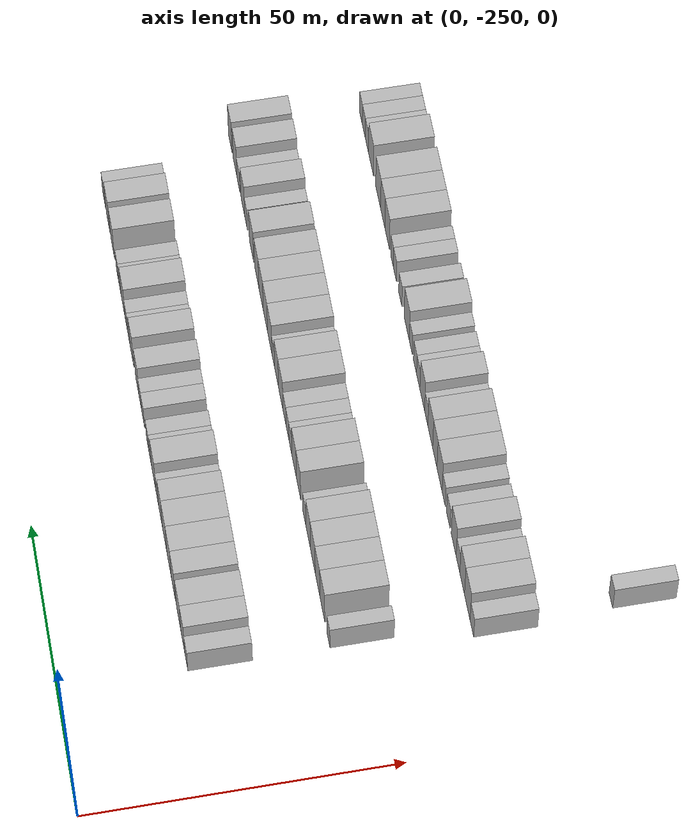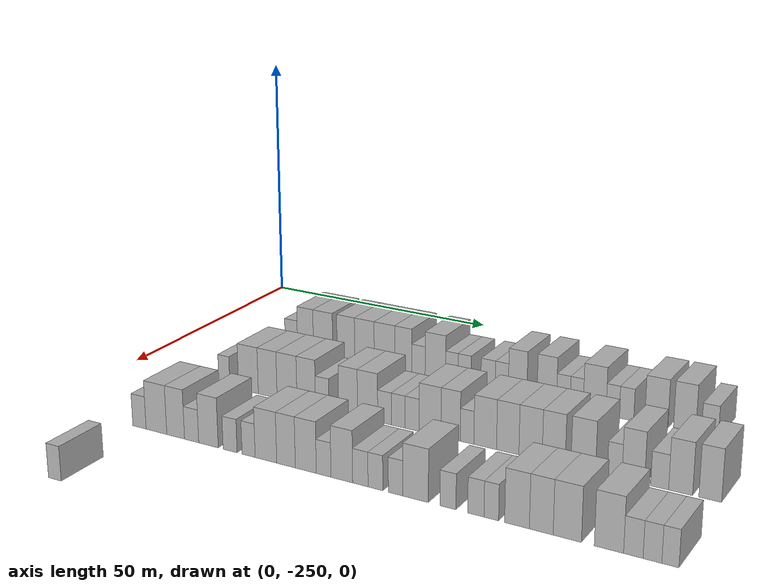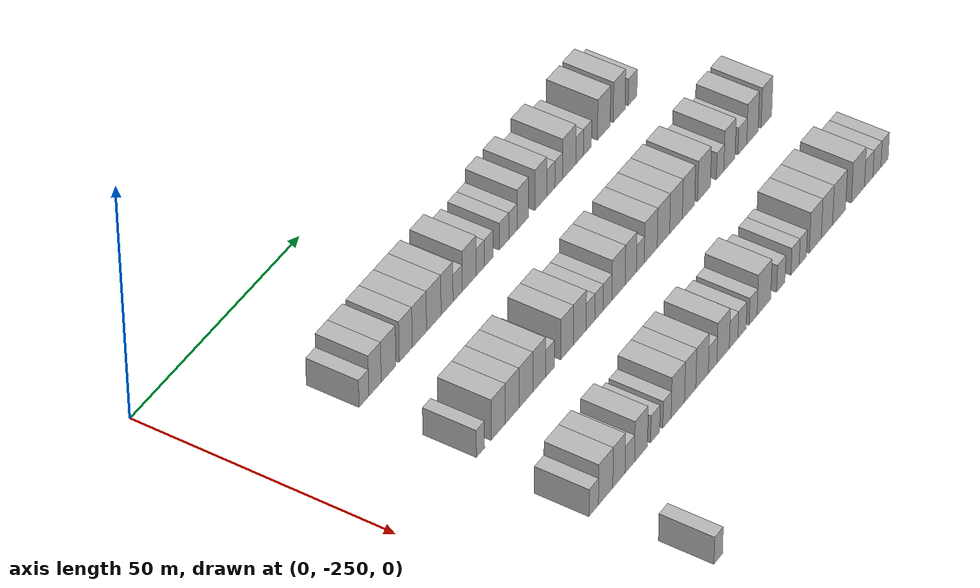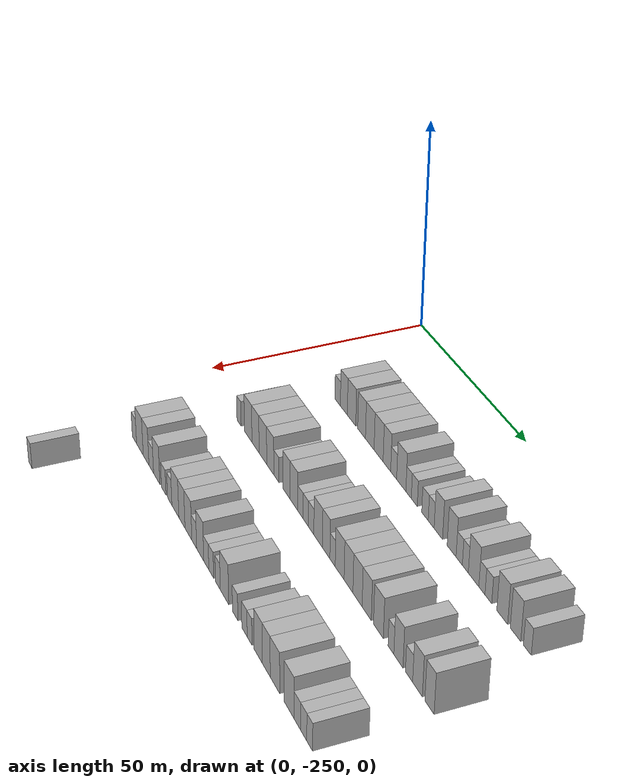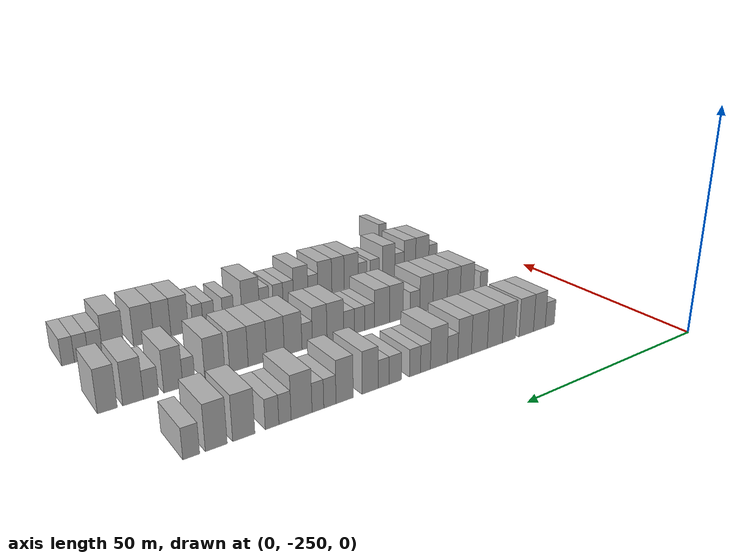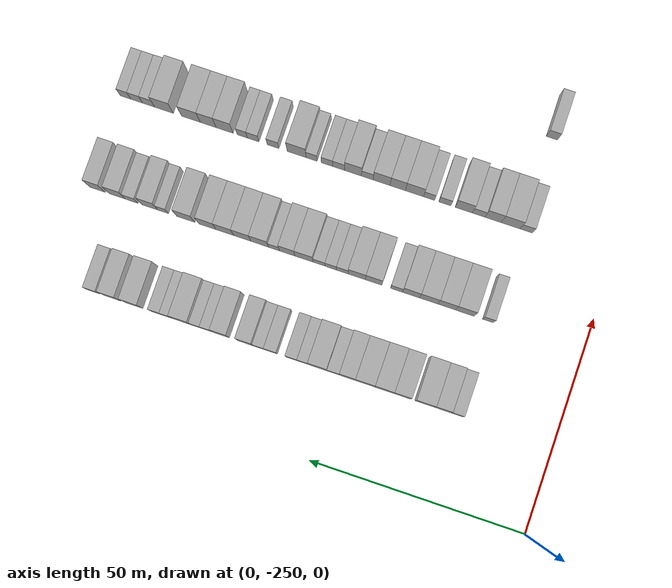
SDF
<sdf version="1.6">
 <world name="default">
  <model name="building_38">
   <static>1</static>
   <pose>25.0000 -227.5501 0 0.000000 0.000000 0.000000</pose>
   <link name="link">
    <pose>0 0 3.00 0 0 0</pose>
    <collision name="collision"><geometry><box><size>10.0000 2.9306 6.0000</size></box></geometry></collision>
    <visual name="visual">
     <cast_shadows>0</cast_shadows>
     <geometry><box><size>10.0000 2.9306 6.0000</size></box></geometry>
     <material>
      <script>
       <uri>model://HANNAS_wall/materials/scripts</uri>
       <uri>model://HANNAS_wall/materials/textures</uri>
       <name>vrc/HANNAS_wall</name>
      </script>
     </material>
    </visual>
   </link>
  </model>
  <model name="building_39">
   <static>1</static>
   <pose>25.0000 -224.2185 0 0.000000 0.000000 0.000000</pose>
   <link name="link">
    <pose>0 0 4.50 0 0 0</pose>
    <collision name="collision"><geometry><box><size>10.0000 3.7326 9.0000</size></box></geometry></collision>
    <visual name="visual">
     <cast_shadows>0</cast_shadows>
     <geometry><box><size>10.0000 3.7326 9.0000</size></box></geometry>
     <material>
      <script>
       <uri>model://HANNAS_wall/materials/scripts</uri>
       <uri>model://HANNAS_wall/materials/textures</uri>
       <name>vrc/HANNAS_wall</name>
      </script>
     </material>
    </visual>
   </link>
  </model>
  <model name="building_40">
   <static>1</static>
   <pose>25.0000 -220.1170 0 0.000000 0.000000 0.000000</pose>
   <link name="link">
    <pose>0 0 4.50 0 0 0</pose>
    <collision name="collision"><geometry><box><size>10.0000 4.4703 9.0000</size></box></geometry></collision>
    <visual name="visual">
     <cast_shadows>0</cast_shadows>
     <geometry><box><size>10.0000 4.4703 9.0000</size></box></geometry>
     <material>
      <script>
       <uri>model://HANNAS_wall/materials/scripts</uri>
       <uri>model://HANNAS_wall/materials/textures</uri>
       <name>vrc/HANNAS_wall</name>
      </script>
     </material>
    </visual>
   </link>
  </model>
  <model name="building_41">
   <static>1</static>
   <pose>25.0000 -214.8841 0 0.000000 0.000000 0.000000</pose>
   <link name="link">
    <pose>0 0 4.50 0 0 0</pose>
    <collision name="collision"><geometry><box><size>10.0000 3.9956 9.0000</size></box></geometry></collision>
    <visual name="visual">
     <cast_shadows>0</cast_shadows>
     <geometry><box><size>10.0000 3.9956 9.0000</size></box></geometry>
     <material>
      <script>
       <uri>model://HANNAS_wall/materials/scripts</uri>
       <uri>model://HANNAS_wall/materials/textures</uri>
       <name>vrc/HANNAS_wall</name>
      </script>
     </material>
    </visual>
   </link>
  </model>
  <model name="building_42">
   <static>1</static>
   <pose>25.0000 -210.6976 0 0.000000 0.000000 0.000000</pose>
   <link name="link">
    <pose>0 0 4.50 0 0 0</pose>
    <collision name="collision"><geometry><box><size>10.0000 4.3773 9.0000</size></box></geometry></collision>
    <visual name="visual">
     <cast_shadows>0</cast_shadows>
     <geometry><box><size>10.0000 4.3773 9.0000</size></box></geometry>
     <material>
      <script>
       <uri>model://HANNAS_wall/materials/scripts</uri>
       <uri>model://HANNAS_wall/materials/textures</uri>
       <name>vrc/HANNAS_wall</name>
      </script>
     </material>
    </visual>
   </link>
  </model>
  <model name="building_43">
   <static>1</static>
   <pose>25.0000 -206.2650 0 0.000000 0.000000 0.000000</pose>
   <link name="link">
    <pose>0 0 4.50 0 0 0</pose>
    <collision name="collision"><geometry><box><size>10.0000 4.4878 9.0000</size></box></geometry></collision>
    <visual name="visual">
     <cast_shadows>0</cast_shadows>
     <geometry><box><size>10.0000 4.4878 9.0000</size></box></geometry>
     <material>
      <script>
       <uri>model://HANNAS_wall/materials/scripts</uri>
       <uri>model://HANNAS_wall/materials/textures</uri>
       <name>vrc/HANNAS_wall</name>
      </script>
     </material>
    </visual>
   </link>
  </model>
  <model name="building_44">
   <static>1</static>
   <pose>25.0000 -202.1682 0 0.000000 0.000000 0.000000</pose>
   <link name="link">
    <pose>0 0 4.50 0 0 0</pose>
    <collision name="collision"><geometry><box><size>10.0000 3.7059 9.0000</size></box></geometry></collision>
    <visual name="visual">
     <cast_shadows>0</cast_shadows>
     <geometry><box><size>10.0000 3.7059 9.0000</size></box></geometry>
     <material>
      <script>
       <uri>model://HANNAS_wall/materials/scripts</uri>
       <uri>model://HANNAS_wall/materials/textures</uri>
       <name>vrc/HANNAS_wall</name>
      </script>
     </material>
    </visual>
   </link>
  </model>
  <model name="building_45">
   <static>1</static>
   <pose>25.0000 -198.8767 0 0.000000 0.000000 0.000000</pose>
   <link name="link">
    <pose>0 0 3.00 0 0 0</pose>
    <collision name="collision"><geometry><box><size>10.0000 2.8770 6.0000</size></box></geometry></collision>
    <visual name="visual">
     <cast_shadows>0</cast_shadows>
     <geometry><box><size>10.0000 2.8770 6.0000</size></box></geometry>
     <material>
      <script>
       <uri>model://HANNAS_wall/materials/scripts</uri>
       <uri>model://HANNAS_wall/materials/textures</uri>
       <name>vrc/HANNAS_wall</name>
      </script>
     </material>
    </visual>
   </link>
  </model>
  <model name="building_46">
   <static>1</static>
   <pose>25.0000 -195.2504 0 0.000000 0.000000 0.000000</pose>
   <link name="link">
    <pose>0 0 4.50 0 0 0</pose>
    <collision name="collision"><geometry><box><size>10.0000 4.3756 9.0000</size></box></geometry></collision>
    <visual name="visual">
     <cast_shadows>0</cast_shadows>
     <geometry><box><size>10.0000 4.3756 9.0000</size></box></geometry>
     <material>
      <script>
       <uri>model://HANNAS_wall/materials/scripts</uri>
       <uri>model://HANNAS_wall/materials/textures</uri>
       <name>vrc/HANNAS_wall</name>
      </script>
     </material>
    </visual>
   </link>
  </model>
  <model name="building_47">
   <static>1</static>
   <pose>25.0000 -191.7952 0 0.000000 0.000000 0.000000</pose>
   <link name="link">
    <pose>0 0 3.00 0 0 0</pose>
    <collision name="collision"><geometry><box><size>10.0000 2.5347 6.0000</size></box></geometry></collision>
    <visual name="visual">
     <cast_shadows>0</cast_shadows>
     <geometry><box><size>10.0000 2.5347 6.0000</size></box></geometry>
     <material>
      <script>
       <uri>model://HANNAS_wall/materials/scripts</uri>
       <uri>model://HANNAS_wall/materials/textures</uri>
       <name>vrc/HANNAS_wall</name>
      </script>
     </material>
    </visual>
   </link>
  </model>
  <model name="building_48">
   <static>1</static>
   <pose>25.0000 -189.1467 0 0.000000 0.000000 0.000000</pose>
   <link name="link">
    <pose>0 0 3.00 0 0 0</pose>
    <collision name="collision"><geometry><box><size>10.0000 2.7623 6.0000</size></box></geometry></collision>
    <visual name="visual">
     <cast_shadows>0</cast_shadows>
     <geometry><box><size>10.0000 2.7623 6.0000</size></box></geometry>
     <material>
      <script>
       <uri>model://HANNAS_wall/materials/scripts</uri>
       <uri>model://HANNAS_wall/materials/textures</uri>
       <name>vrc/HANNAS_wall</name>
      </script>
     </material>
    </visual>
   </link>
  </model>
  <model name="building_49">
   <static>1</static>
   <pose>25.0000 -184.2876 0 0.000000 0.000000 0.000000</pose>
   <link name="link">
    <pose>0 0 3.00 0 0 0</pose>
    <collision name="collision"><geometry><box><size>10.0000 2.9561 6.0000</size></box></geometry></collision>
    <visual name="visual">
     <cast_shadows>0</cast_shadows>
     <geometry><box><size>10.0000 2.9561 6.0000</size></box></geometry>
     <material>
      <script>
       <uri>model://HANNAS_wall/materials/scripts</uri>
       <uri>model://HANNAS_wall/materials/textures</uri>
       <name>vrc/HANNAS_wall</name>
      </script>
     </material>
    </visual>
   </link>
  </model>
  <model name="building_50">
   <static>1</static>
   <pose>25.0000 -181.4970 0 0.000000 0.000000 0.000000</pose>
   <link name="link">
    <pose>0 0 3.00 0 0 0</pose>
    <collision name="collision"><geometry><box><size>10.0000 2.6252 6.0000</size></box></geometry></collision>
    <visual name="visual">
     <cast_shadows>0</cast_shadows>
     <geometry><box><size>10.0000 2.6252 6.0000</size></box></geometry>
     <material>
      <script>
       <uri>model://HANNAS_wall/materials/scripts</uri>
       <uri>model://HANNAS_wall/materials/textures</uri>
       <name>vrc/HANNAS_wall</name>
      </script>
     </material>
    </visual>
   </link>
  </model>
  <model name="building_51">
   <static>1</static>
   <pose>25.0000 -178.3346 0 0.000000 0.000000 0.000000</pose>
   <link name="link">
    <pose>0 0 4.50 0 0 0</pose>
    <collision name="collision"><geometry><box><size>10.0000 3.6994 9.0000</size></box></geometry></collision>
    <visual name="visual">
     <cast_shadows>0</cast_shadows>
     <geometry><box><size>10.0000 3.6994 9.0000</size></box></geometry>
     <material>
      <script>
       <uri>model://HANNAS_wall/materials/scripts</uri>
       <uri>model://HANNAS_wall/materials/textures</uri>
       <name>vrc/HANNAS_wall</name>
      </script>
     </material>
    </visual>
   </link>
  </model>
  <model name="building_52">
   <static>1</static>
   <pose>25.0000 -172.5775 0 0.000000 0.000000 0.000000</pose>
   <link name="link">
    <pose>0 0 4.50 0 0 0</pose>
    <collision name="collision"><geometry><box><size>10.0000 3.8149 9.0000</size></box></geometry></collision>
    <visual name="visual">
     <cast_shadows>0</cast_shadows>
     <geometry><box><size>10.0000 3.8149 9.0000</size></box></geometry>
     <material>
      <script>
       <uri>model://HANNAS_wall/materials/scripts</uri>
       <uri>model://HANNAS_wall/materials/textures</uri>
       <name>vrc/HANNAS_wall</name>
      </script>
     </material>
    </visual>
   </link>
  </model>
  <model name="building_53">
   <static>1</static>
   <pose>25.0000 -169.3483 0 0.000000 0.000000 0.000000</pose>
   <link name="link">
    <pose>0 0 3.00 0 0 0</pose>
    <collision name="collision"><geometry><box><size>10.0000 2.6435 6.0000</size></box></geometry></collision>
    <visual name="visual">
     <cast_shadows>0</cast_shadows>
     <geometry><box><size>10.0000 2.6435 6.0000</size></box></geometry>
     <material>
      <script>
       <uri>model://HANNAS_wall/materials/scripts</uri>
       <uri>model://HANNAS_wall/materials/textures</uri>
       <name>vrc/HANNAS_wall</name>
      </script>
     </material>
    </visual>
   </link>
  </model>
  <model name="building_54">
   <static>1</static>
   <pose>25.0000 -166.7828 0 0.000000 0.000000 0.000000</pose>
   <link name="link">
    <pose>0 0 3.00 0 0 0</pose>
    <collision name="collision"><geometry><box><size>10.0000 2.4876 6.0000</size></box></geometry></collision>
    <visual name="visual">
     <cast_shadows>0</cast_shadows>
     <geometry><box><size>10.0000 2.4876 6.0000</size></box></geometry>
     <material>
      <script>
       <uri>model://HANNAS_wall/materials/scripts</uri>
       <uri>model://HANNAS_wall/materials/textures</uri>
       <name>vrc/HANNAS_wall</name>
      </script>
     </material>
    </visual>
   </link>
  </model>
  <model name="building_55">
   <static>1</static>
   <pose>25.0000 -163.3808 0 0.000000 0.000000 0.000000</pose>
   <link name="link">
    <pose>0 0 4.50 0 0 0</pose>
    <collision name="collision"><geometry><box><size>10.0000 4.3163 9.0000</size></box></geometry></collision>
    <visual name="visual">
     <cast_shadows>0</cast_shadows>
     <geometry><box><size>10.0000 4.3163 9.0000</size></box></geometry>
     <material>
      <script>
       <uri>model://HANNAS_wall/materials/scripts</uri>
       <uri>model://HANNAS_wall/materials/textures</uri>
       <name>vrc/HANNAS_wall</name>
      </script>
     </material>
    </visual>
   </link>
  </model>
  <model name="building_56">
   <static>1</static>
   <pose>25.0000 -159.9866 0 0.000000 0.000000 0.000000</pose>
   <link name="link">
    <pose>0 0 3.00 0 0 0</pose>
    <collision name="collision"><geometry><box><size>10.0000 2.4721 6.0000</size></box></geometry></collision>
    <visual name="visual">
     <cast_shadows>0</cast_shadows>
     <geometry><box><size>10.0000 2.4721 6.0000</size></box></geometry>
     <material>
      <script>
       <uri>model://HANNAS_wall/materials/scripts</uri>
       <uri>model://HANNAS_wall/materials/textures</uri>
       <name>vrc/HANNAS_wall</name>
      </script>
     </material>
    </visual>
   </link>
  </model>
  <model name="building_57">
   <static>1</static>
   <pose>25.0000 -157.4108 0 0.000000 0.000000 0.000000</pose>
   <link name="link">
    <pose>0 0 3.00 0 0 0</pose>
    <collision name="collision"><geometry><box><size>10.0000 2.6796 6.0000</size></box></geometry></collision>
    <visual name="visual">
     <cast_shadows>0</cast_shadows>
     <geometry><box><size>10.0000 2.6796 6.0000</size></box></geometry>
     <material>
      <script>
       <uri>model://HANNAS_wall/materials/scripts</uri>
       <uri>model://HANNAS_wall/materials/textures</uri>
       <name>vrc/HANNAS_wall</name>
      </script>
     </material>
    </visual>
   </link>
  </model>
  <model name="building_58">
   <static>1</static>
   <pose>25.0000 -151.9723 0 0.000000 0.000000 0.000000</pose>
   <link name="link">
    <pose>0 0 4.50 0 0 0</pose>
    <collision name="collision"><geometry><box><size>10.0000 4.1973 9.0000</size></box></geometry></collision>
    <visual name="visual">
     <cast_shadows>0</cast_shadows>
     <geometry><box><size>10.0000 4.1973 9.0000</size></box></geometry>
     <material>
      <script>
       <uri>model://HANNAS_wall/materials/scripts</uri>
       <uri>model://HANNAS_wall/materials/textures</uri>
       <name>vrc/HANNAS_wall</name>
      </script>
     </material>
    </visual>
   </link>
  </model>
  <model name="building_59">
   <static>1</static>
   <pose>25.0000 -146.8937 0 0.000000 0.000000 0.000000</pose>
   <link name="link">
    <pose>0 0 4.50 0 0 0</pose>
    <collision name="collision"><geometry><box><size>10.0000 3.9599 9.0000</size></box></geometry></collision>
    <visual name="visual">
     <cast_shadows>0</cast_shadows>
     <geometry><box><size>10.0000 3.9599 9.0000</size></box></geometry>
     <material>
      <script>
       <uri>model://HANNAS_wall/materials/scripts</uri>
       <uri>model://HANNAS_wall/materials/textures</uri>
       <name>vrc/HANNAS_wall</name>
      </script>
     </material>
    </visual>
   </link>
  </model>
  <model name="building_60">
   <static>1</static>
   <pose>25.0000 -142.4463 0 0.000000 0.000000 0.000000</pose>
   <link name="link">
    <pose>0 0 3.00 0 0 0</pose>
    <collision name="collision"><geometry><box><size>10.0000 2.9349 6.0000</size></box></geometry></collision>
    <visual name="visual">
     <cast_shadows>0</cast_shadows>
     <geometry><box><size>10.0000 2.9349 6.0000</size></box></geometry>
     <material>
      <script>
       <uri>model://HANNAS_wall/materials/scripts</uri>
       <uri>model://HANNAS_wall/materials/textures</uri>
       <name>vrc/HANNAS_wall</name>
      </script>
     </material>
    </visual>
   </link>
  </model>
  <model name="building_227">
   <static>1</static>
   <pose>47.0000 -227.7443 0 0.000000 0.000000 0.000000</pose>
   <link name="link">
    <pose>0 0 3.00 0 0 0</pose>
    <collision name="collision"><geometry><box><size>10.0000 2.4905 6.0000</size></box></geometry></collision>
    <visual name="visual">
     <cast_shadows>0</cast_shadows>
     <geometry><box><size>10.0000 2.4905 6.0000</size></box></geometry>
     <material>
      <script>
       <uri>model://HANNAS_wall/materials/scripts</uri>
       <uri>model://HANNAS_wall/materials/textures</uri>
       <name>vrc/HANNAS_wall</name>
      </script>
     </material>
    </visual>
   </link>
  </model>
  <model name="building_228">
   <static>1</static>
   <pose>47.0000 -222.3097 0 0.000000 0.000000 0.000000</pose>
   <link name="link">
    <pose>0 0 4.50 0 0 0</pose>
    <collision name="collision"><geometry><box><size>10.0000 4.3787 9.0000</size></box></geometry></collision>
    <visual name="visual">
     <cast_shadows>0</cast_shadows>
     <geometry><box><size>10.0000 4.3787 9.0000</size></box></geometry>
     <material>
      <script>
       <uri>model://HANNAS_wall/materials/scripts</uri>
       <uri>model://HANNAS_wall/materials/textures</uri>
       <name>vrc/HANNAS_wall</name>
      </script>
     </material>
    </visual>
   </link>
  </model>
  <model name="building_229">
   <static>1</static>
   <pose>47.0000 -218.0589 0 0.000000 0.000000 0.000000</pose>
   <link name="link">
    <pose>0 0 4.50 0 0 0</pose>
    <collision name="collision"><geometry><box><size>10.0000 4.1229 9.0000</size></box></geometry></collision>
    <visual name="visual">
     <cast_shadows>0</cast_shadows>
     <geometry><box><size>10.0000 4.1229 9.0000</size></box></geometry>
     <material>
      <script>
       <uri>model://HANNAS_wall/materials/scripts</uri>
       <uri>model://HANNAS_wall/materials/textures</uri>
       <name>vrc/HANNAS_wall</name>
      </script>
     </material>
    </visual>
   </link>
  </model>
  <model name="building_230">
   <static>1</static>
   <pose>47.0000 -213.8339 0 0.000000 0.000000 0.000000</pose>
   <link name="link">
    <pose>0 0 4.50 0 0 0</pose>
    <collision name="collision"><geometry><box><size>10.0000 4.3271 9.0000</size></box></geometry></collision>
    <visual name="visual">
     <cast_shadows>0</cast_shadows>
     <geometry><box><size>10.0000 4.3271 9.0000</size></box></geometry>
     <material>
      <script>
       <uri>model://HANNAS_wall/materials/scripts</uri>
       <uri>model://HANNAS_wall/materials/textures</uri>
       <name>vrc/HANNAS_wall</name>
      </script>
     </material>
    </visual>
   </link>
  </model>
  <model name="building_231">
   <static>1</static>
   <pose>47.0000 -209.6981 0 0.000000 0.000000 0.000000</pose>
   <link name="link">
    <pose>0 0 4.50 0 0 0</pose>
    <collision name="collision"><geometry><box><size>10.0000 3.9444 9.0000</size></box></geometry></collision>
    <visual name="visual">
     <cast_shadows>0</cast_shadows>
     <geometry><box><size>10.0000 3.9444 9.0000</size></box></geometry>
     <material>
      <script>
       <uri>model://HANNAS_wall/materials/scripts</uri>
       <uri>model://HANNAS_wall/materials/textures</uri>
       <name>vrc/HANNAS_wall</name>
      </script>
     </material>
    </visual>
   </link>
  </model>
  <model name="building_232">
   <static>1</static>
   <pose>47.0000 -206.3019 0 0.000000 0.000000 0.000000</pose>
   <link name="link">
    <pose>0 0 3.00 0 0 0</pose>
    <collision name="collision"><geometry><box><size>10.0000 2.8481 6.0000</size></box></geometry></collision>
    <visual name="visual">
     <cast_shadows>0</cast_shadows>
     <geometry><box><size>10.0000 2.8481 6.0000</size></box></geometry>
     <material>
      <script>
       <uri>model://HANNAS_wall/materials/scripts</uri>
       <uri>model://HANNAS_wall/materials/textures</uri>
       <name>vrc/HANNAS_wall</name>
      </script>
     </material>
    </visual>
   </link>
  </model>
  <model name="building_233">
   <static>1</static>
   <pose>47.0000 -200.9284 0 0.000000 0.000000 0.000000</pose>
   <link name="link">
    <pose>0 0 4.50 0 0 0</pose>
    <collision name="collision"><geometry><box><size>10.0000 3.8990 9.0000</size></box></geometry></collision>
    <visual name="visual">
     <cast_shadows>0</cast_shadows>
     <geometry><box><size>10.0000 3.8990 9.0000</size></box></geometry>
     <material>
      <script>
       <uri>model://HANNAS_wall/materials/scripts</uri>
       <uri>model://HANNAS_wall/materials/textures</uri>
       <name>vrc/HANNAS_wall</name>
      </script>
     </material>
    </visual>
   </link>
  </model>
  <model name="building_234">
   <static>1</static>
   <pose>47.0000 -196.9342 0 0.000000 0.000000 0.000000</pose>
   <link name="link">
    <pose>0 0 4.50 0 0 0</pose>
    <collision name="collision"><geometry><box><size>10.0000 4.0894 9.0000</size></box></geometry></collision>
    <visual name="visual">
     <cast_shadows>0</cast_shadows>
     <geometry><box><size>10.0000 4.0894 9.0000</size></box></geometry>
     <material>
      <script>
       <uri>model://HANNAS_wall/materials/scripts</uri>
       <uri>model://HANNAS_wall/materials/textures</uri>
       <name>vrc/HANNAS_wall</name>
      </script>
     </material>
    </visual>
   </link>
  </model>
  <model name="building_235">
   <static>1</static>
   <pose>47.0000 -193.5232 0 0.000000 0.000000 0.000000</pose>
   <link name="link">
    <pose>0 0 3.00 0 0 0</pose>
    <collision name="collision"><geometry><box><size>10.0000 2.7324 6.0000</size></box></geometry></collision>
    <visual name="visual">
     <cast_shadows>0</cast_shadows>
     <geometry><box><size>10.0000 2.7324 6.0000</size></box></geometry>
     <material>
      <script>
       <uri>model://HANNAS_wall/materials/scripts</uri>
       <uri>model://HANNAS_wall/materials/textures</uri>
       <name>vrc/HANNAS_wall</name>
      </script>
     </material>
    </visual>
   </link>
  </model>
  <model name="building_236">
   <static>1</static>
   <pose>47.0000 -190.8149 0 0.000000 0.000000 0.000000</pose>
   <link name="link">
    <pose>0 0 3.00 0 0 0</pose>
    <collision name="collision"><geometry><box><size>10.0000 2.6842 6.0000</size></box></geometry></collision>
    <visual name="visual">
     <cast_shadows>0</cast_shadows>
     <geometry><box><size>10.0000 2.6842 6.0000</size></box></geometry>
     <material>
      <script>
       <uri>model://HANNAS_wall/materials/scripts</uri>
       <uri>model://HANNAS_wall/materials/textures</uri>
       <name>vrc/HANNAS_wall</name>
      </script>
     </material>
    </visual>
   </link>
  </model>
  <model name="building_237">
   <static>1</static>
   <pose>47.0000 -188.0680 0 0.000000 0.000000 0.000000</pose>
   <link name="link">
    <pose>0 0 3.00 0 0 0</pose>
    <collision name="collision"><geometry><box><size>10.0000 2.8097 6.0000</size></box></geometry></collision>
    <visual name="visual">
     <cast_shadows>0</cast_shadows>
     <geometry><box><size>10.0000 2.8097 6.0000</size></box></geometry>
     <material>
      <script>
       <uri>model://HANNAS_wall/materials/scripts</uri>
       <uri>model://HANNAS_wall/materials/textures</uri>
       <name>vrc/HANNAS_wall</name>
      </script>
     </material>
    </visual>
   </link>
  </model>
  <model name="building_238">
   <static>1</static>
   <pose>47.0000 -184.5304 0 0.000000 0.000000 0.000000</pose>
   <link name="link">
    <pose>0 0 4.50 0 0 0</pose>
    <collision name="collision"><geometry><box><size>10.0000 4.2655 9.0000</size></box></geometry></collision>
    <visual name="visual">
     <cast_shadows>0</cast_shadows>
     <geometry><box><size>10.0000 4.2655 9.0000</size></box></geometry>
     <material>
      <script>
       <uri>model://HANNAS_wall/materials/scripts</uri>
       <uri>model://HANNAS_wall/materials/textures</uri>
       <name>vrc/HANNAS_wall</name>
      </script>
     </material>
    </visual>
   </link>
  </model>
  <model name="building_239">
   <static>1</static>
   <pose>47.0000 -180.5744 0 0.000000 0.000000 0.000000</pose>
   <link name="link">
    <pose>0 0 4.50 0 0 0</pose>
    <collision name="collision"><geometry><box><size>10.0000 3.6466 9.0000</size></box></geometry></collision>
    <visual name="visual">
     <cast_shadows>0</cast_shadows>
     <geometry><box><size>10.0000 3.6466 9.0000</size></box></geometry>
     <material>
      <script>
       <uri>model://HANNAS_wall/materials/scripts</uri>
       <uri>model://HANNAS_wall/materials/textures</uri>
       <name>vrc/HANNAS_wall</name>
      </script>
     </material>
    </visual>
   </link>
  </model>
  <model name="building_240">
   <static>1</static>
   <pose>47.0000 -177.4711 0 0.000000 0.000000 0.000000</pose>
   <link name="link">
    <pose>0 0 3.00 0 0 0</pose>
    <collision name="collision"><geometry><box><size>10.0000 2.5599 6.0000</size></box></geometry></collision>
    <visual name="visual">
     <cast_shadows>0</cast_shadows>
     <geometry><box><size>10.0000 2.5599 6.0000</size></box></geometry>
     <material>
      <script>
       <uri>model://HANNAS_wall/materials/scripts</uri>
       <uri>model://HANNAS_wall/materials/textures</uri>
       <name>vrc/HANNAS_wall</name>
      </script>
     </material>
    </visual>
   </link>
  </model>
  <model name="building_241">
   <static>1</static>
   <pose>47.0000 -174.0859 0 0.000000 0.000000 0.000000</pose>
   <link name="link">
    <pose>0 0 4.50 0 0 0</pose>
    <collision name="collision"><geometry><box><size>10.0000 4.2106 9.0000</size></box></geometry></collision>
    <visual name="visual">
     <cast_shadows>0</cast_shadows>
     <geometry><box><size>10.0000 4.2106 9.0000</size></box></geometry>
     <material>
      <script>
       <uri>model://HANNAS_wall/materials/scripts</uri>
       <uri>model://HANNAS_wall/materials/textures</uri>
       <name>vrc/HANNAS_wall</name>
      </script>
     </material>
    </visual>
   </link>
  </model>
  <model name="building_242">
   <static>1</static>
   <pose>47.0000 -169.9329 0 0.000000 0.000000 0.000000</pose>
   <link name="link">
    <pose>0 0 4.50 0 0 0</pose>
    <collision name="collision"><geometry><box><size>10.0000 4.0954 9.0000</size></box></geometry></collision>
    <visual name="visual">
     <cast_shadows>0</cast_shadows>
     <geometry><box><size>10.0000 4.0954 9.0000</size></box></geometry>
     <material>
      <script>
       <uri>model://HANNAS_wall/materials/scripts</uri>
       <uri>model://HANNAS_wall/materials/textures</uri>
       <name>vrc/HANNAS_wall</name>
      </script>
     </material>
    </visual>
   </link>
  </model>
  <model name="building_243">
   <static>1</static>
   <pose>47.0000 -165.7946 0 0.000000 0.000000 0.000000</pose>
   <link name="link">
    <pose>0 0 4.50 0 0 0</pose>
    <collision name="collision"><geometry><box><size>10.0000 4.1813 9.0000</size></box></geometry></collision>
    <visual name="visual">
     <cast_shadows>0</cast_shadows>
     <geometry><box><size>10.0000 4.1813 9.0000</size></box></geometry>
     <material>
      <script>
       <uri>model://HANNAS_wall/materials/scripts</uri>
       <uri>model://HANNAS_wall/materials/textures</uri>
       <name>vrc/HANNAS_wall</name>
      </script>
     </material>
    </visual>
   </link>
  </model>
  <model name="building_244">
   <static>1</static>
   <pose>47.0000 -161.6679 0 0.000000 0.000000 0.000000</pose>
   <link name="link">
    <pose>0 0 4.50 0 0 0</pose>
    <collision name="collision"><geometry><box><size>10.0000 4.0721 9.0000</size></box></geometry></collision>
    <visual name="visual">
     <cast_shadows>0</cast_shadows>
     <geometry><box><size>10.0000 4.0721 9.0000</size></box></geometry>
     <material>
      <script>
       <uri>model://HANNAS_wall/materials/scripts</uri>
       <uri>model://HANNAS_wall/materials/textures</uri>
       <name>vrc/HANNAS_wall</name>
      </script>
     </material>
    </visual>
   </link>
  </model>
  <model name="building_245">
   <static>1</static>
   <pose>47.0000 -156.4948 0 0.000000 0.000000 0.000000</pose>
   <link name="link">
    <pose>0 0 4.50 0 0 0</pose>
    <collision name="collision"><geometry><box><size>10.0000 4.2740 9.0000</size></box></geometry></collision>
    <visual name="visual">
     <cast_shadows>0</cast_shadows>
     <geometry><box><size>10.0000 4.2740 9.0000</size></box></geometry>
     <material>
      <script>
       <uri>model://HANNAS_wall/materials/scripts</uri>
       <uri>model://HANNAS_wall/materials/textures</uri>
       <name>vrc/HANNAS_wall</name>
      </script>
     </material>
    </visual>
   </link>
  </model>
  <model name="building_246">
   <static>1</static>
   <pose>47.0000 -151.1159 0 0.000000 0.000000 0.000000</pose>
   <link name="link">
    <pose>0 0 3.00 0 0 0</pose>
    <collision name="collision"><geometry><box><size>10.0000 2.4838 6.0000</size></box></geometry></collision>
    <visual name="visual">
     <cast_shadows>0</cast_shadows>
     <geometry><box><size>10.0000 2.4838 6.0000</size></box></geometry>
     <material>
      <script>
       <uri>model://HANNAS_wall/materials/scripts</uri>
       <uri>model://HANNAS_wall/materials/textures</uri>
       <name>vrc/HANNAS_wall</name>
      </script>
     </material>
    </visual>
   </link>
  </model>
  <model name="building_247">
   <static>1</static>
   <pose>47.0000 -147.9757 0 0.000000 0.000000 0.000000</pose>
   <link name="link">
    <pose>0 0 4.50 0 0 0</pose>
    <collision name="collision"><geometry><box><size>10.0000 3.7967 9.0000</size></box></geometry></collision>
    <visual name="visual">
     <cast_shadows>0</cast_shadows>
     <geometry><box><size>10.0000 3.7967 9.0000</size></box></geometry>
     <material>
      <script>
       <uri>model://HANNAS_wall/materials/scripts</uri>
       <uri>model://HANNAS_wall/materials/textures</uri>
       <name>vrc/HANNAS_wall</name>
      </script>
     </material>
    </visual>
   </link>
  </model>
  <model name="building_248">
   <static>1</static>
   <pose>47.0000 -143.6056 0 0.000000 0.000000 0.000000</pose>
   <link name="link">
    <pose>0 0 3.00 0 0 0</pose>
    <collision name="collision"><geometry><box><size>10.0000 2.9435 6.0000</size></box></geometry></collision>
    <visual name="visual">
     <cast_shadows>0</cast_shadows>
     <geometry><box><size>10.0000 2.9435 6.0000</size></box></geometry>
     <material>
      <script>
       <uri>model://HANNAS_wall/materials/scripts</uri>
       <uri>model://HANNAS_wall/materials/textures</uri>
       <name>vrc/HANNAS_wall</name>
      </script>
     </material>
    </visual>
   </link>
  </model>
  <model name="building_249">
   <static>1</static>
   <pose>47.0000 -140.1916 0 0.000000 0.000000 0.000000</pose>
   <link name="link">
    <pose>0 0 4.50 0 0 0</pose>
    <collision name="collision"><geometry><box><size>10.0000 3.8844 9.0000</size></box></geometry></collision>
    <visual name="visual">
     <cast_shadows>0</cast_shadows>
     <geometry><box><size>10.0000 3.8844 9.0000</size></box></geometry>
     <material>
      <script>
       <uri>model://HANNAS_wall/materials/scripts</uri>
       <uri>model://HANNAS_wall/materials/textures</uri>
       <name>vrc/HANNAS_wall</name>
      </script>
     </material>
    </visual>
   </link>
  </model>
  <model name="building_250">
   <static>1</static>
   <pose>47.0000 -135.4437 0 0.000000 0.000000 0.000000</pose>
   <link name="link">
    <pose>0 0 4.50 0 0 0</pose>
    <collision name="collision"><geometry><box><size>10.0000 3.6113 9.0000</size></box></geometry></collision>
    <visual name="visual">
     <cast_shadows>0</cast_shadows>
     <geometry><box><size>10.0000 3.6113 9.0000</size></box></geometry>
     <material>
      <script>
       <uri>model://HANNAS_wall/materials/scripts</uri>
       <uri>model://HANNAS_wall/materials/textures</uri>
       <name>vrc/HANNAS_wall</name>
      </script>
     </material>
    </visual>
   </link>
  </model>
  <model name="building_413">
   <static>1</static>
   <pose>69.0000 -229.6196 0 0.000000 0.000000 0.000000</pose>
   <link name="link">
    <pose>0 0 3.00 0 0 0</pose>
    <collision name="collision"><geometry><box><size>10.0000 2.9116 6.0000</size></box></geometry></collision>
    <visual name="visual">
     <cast_shadows>0</cast_shadows>
     <geometry><box><size>10.0000 2.9116 6.0000</size></box></geometry>
     <material>
      <script>
       <uri>model://HANNAS_wall/materials/scripts</uri>
       <uri>model://HANNAS_wall/materials/textures</uri>
       <name>vrc/HANNAS_wall</name>
      </script>
     </material>
    </visual>
   </link>
  </model>
  <model name="building_414">
   <static>1</static>
   <pose>69.0000 -225.9229 0 0.000000 0.000000 0.000000</pose>
   <link name="link">
    <pose>0 0 4.50 0 0 0</pose>
    <collision name="collision"><geometry><box><size>10.0000 4.4818 9.0000</size></box></geometry></collision>
    <visual name="visual">
     <cast_shadows>0</cast_shadows>
     <geometry><box><size>10.0000 4.4818 9.0000</size></box></geometry>
     <material>
      <script>
       <uri>model://HANNAS_wall/materials/scripts</uri>
       <uri>model://HANNAS_wall/materials/textures</uri>
       <name>vrc/HANNAS_wall</name>
      </script>
     </material>
    </visual>
   </link>
  </model>
  <model name="building_415">
   <static>1</static>
   <pose>69.0000 -221.7851 0 0.000000 0.000000 0.000000</pose>
   <link name="link">
    <pose>0 0 4.50 0 0 0</pose>
    <collision name="collision"><geometry><box><size>10.0000 3.7938 9.0000</size></box></geometry></collision>
    <visual name="visual">
     <cast_shadows>0</cast_shadows>
     <geometry><box><size>10.0000 3.7938 9.0000</size></box></geometry>
     <material>
      <script>
       <uri>model://HANNAS_wall/materials/scripts</uri>
       <uri>model://HANNAS_wall/materials/textures</uri>
       <name>vrc/HANNAS_wall</name>
      </script>
     </material>
    </visual>
   </link>
  </model>
  <model name="building_416">
   <static>1</static>
   <pose>69.0000 -218.3958 0 0.000000 0.000000 0.000000</pose>
   <link name="link">
    <pose>0 0 3.00 0 0 0</pose>
    <collision name="collision"><geometry><box><size>10.0000 2.9848 6.0000</size></box></geometry></collision>
    <visual name="visual">
     <cast_shadows>0</cast_shadows>
     <geometry><box><size>10.0000 2.9848 6.0000</size></box></geometry>
     <material>
      <script>
       <uri>model://HANNAS_wall/materials/scripts</uri>
       <uri>model://HANNAS_wall/materials/textures</uri>
       <name>vrc/HANNAS_wall</name>
      </script>
     </material>
    </visual>
   </link>
  </model>
  <model name="building_417">
   <static>1</static>
   <pose>69.0000 -214.8730 0 0.000000 0.000000 0.000000</pose>
   <link name="link">
    <pose>0 0 4.50 0 0 0</pose>
    <collision name="collision"><geometry><box><size>10.0000 4.0607 9.0000</size></box></geometry></collision>
    <visual name="visual">
     <cast_shadows>0</cast_shadows>
     <geometry><box><size>10.0000 4.0607 9.0000</size></box></geometry>
     <material>
      <script>
       <uri>model://HANNAS_wall/materials/scripts</uri>
       <uri>model://HANNAS_wall/materials/textures</uri>
       <name>vrc/HANNAS_wall</name>
      </script>
     </material>
    </visual>
   </link>
  </model>
  <model name="building_418">
   <static>1</static>
   <pose>69.0000 -210.4171 0 0.000000 0.000000 0.000000</pose>
   <link name="link">
    <pose>0 0 3.00 0 0 0</pose>
    <collision name="collision"><geometry><box><size>10.0000 2.8510 6.0000</size></box></geometry></collision>
    <visual name="visual">
     <cast_shadows>0</cast_shadows>
     <geometry><box><size>10.0000 2.8510 6.0000</size></box></geometry>
     <material>
      <script>
       <uri>model://HANNAS_wall/materials/scripts</uri>
       <uri>model://HANNAS_wall/materials/textures</uri>
       <name>vrc/HANNAS_wall</name>
      </script>
     </material>
    </visual>
   </link>
  </model>
  <model name="building_419">
   <static>1</static>
   <pose>69.0000 -206.6748 0 0.000000 0.000000 0.000000</pose>
   <link name="link">
    <pose>0 0 3.00 0 0 0</pose>
    <collision name="collision"><geometry><box><size>10.0000 2.6335 6.0000</size></box></geometry></collision>
    <visual name="visual">
     <cast_shadows>0</cast_shadows>
     <geometry><box><size>10.0000 2.6335 6.0000</size></box></geometry>
     <material>
      <script>
       <uri>model://HANNAS_wall/materials/scripts</uri>
       <uri>model://HANNAS_wall/materials/textures</uri>
       <name>vrc/HANNAS_wall</name>
      </script>
     </material>
    </visual>
   </link>
  </model>
  <model name="building_420">
   <static>1</static>
   <pose>69.0000 -203.2180 0 0.000000 0.000000 0.000000</pose>
   <link name="link">
    <pose>0 0 4.50 0 0 0</pose>
    <collision name="collision"><geometry><box><size>10.0000 4.2801 9.0000</size></box></geometry></collision>
    <visual name="visual">
     <cast_shadows>0</cast_shadows>
     <geometry><box><size>10.0000 4.2801 9.0000</size></box></geometry>
     <material>
      <script>
       <uri>model://HANNAS_wall/materials/scripts</uri>
       <uri>model://HANNAS_wall/materials/textures</uri>
       <name>vrc/HANNAS_wall</name>
      </script>
     </material>
    </visual>
   </link>
  </model>
  <model name="building_421">
   <static>1</static>
   <pose>69.0000 -199.2600 0 0.000000 0.000000 0.000000</pose>
   <link name="link">
    <pose>0 0 4.50 0 0 0</pose>
    <collision name="collision"><geometry><box><size>10.0000 3.6358 9.0000</size></box></geometry></collision>
    <visual name="visual">
     <cast_shadows>0</cast_shadows>
     <geometry><box><size>10.0000 3.6358 9.0000</size></box></geometry>
     <material>
      <script>
       <uri>model://HANNAS_wall/materials/scripts</uri>
       <uri>model://HANNAS_wall/materials/textures</uri>
       <name>vrc/HANNAS_wall</name>
      </script>
     </material>
    </visual>
   </link>
  </model>
  <model name="building_422">
   <static>1</static>
   <pose>69.0000 -195.4335 0 0.000000 0.000000 0.000000</pose>
   <link name="link">
    <pose>0 0 4.50 0 0 0</pose>
    <collision name="collision"><geometry><box><size>10.0000 4.0173 9.0000</size></box></geometry></collision>
    <visual name="visual">
     <cast_shadows>0</cast_shadows>
     <geometry><box><size>10.0000 4.0173 9.0000</size></box></geometry>
     <material>
      <script>
       <uri>model://HANNAS_wall/materials/scripts</uri>
       <uri>model://HANNAS_wall/materials/textures</uri>
       <name>vrc/HANNAS_wall</name>
      </script>
     </material>
    </visual>
   </link>
  </model>
  <model name="building_423">
   <static>1</static>
   <pose>69.0000 -192.0335 0 0.000000 0.000000 0.000000</pose>
   <link name="link">
    <pose>0 0 3.00 0 0 0</pose>
    <collision name="collision"><geometry><box><size>10.0000 2.7827 6.0000</size></box></geometry></collision>
    <visual name="visual">
     <cast_shadows>0</cast_shadows>
     <geometry><box><size>10.0000 2.7827 6.0000</size></box></geometry>
     <material>
      <script>
       <uri>model://HANNAS_wall/materials/scripts</uri>
       <uri>model://HANNAS_wall/materials/textures</uri>
       <name>vrc/HANNAS_wall</name>
      </script>
     </material>
    </visual>
   </link>
  </model>
  <model name="building_424">
   <static>1</static>
   <pose>69.0000 -188.6246 0 0.000000 0.000000 0.000000</pose>
   <link name="link">
    <pose>0 0 4.50 0 0 0</pose>
    <collision name="collision"><geometry><box><size>10.0000 4.0349 9.0000</size></box></geometry></collision>
    <visual name="visual">
     <cast_shadows>0</cast_shadows>
     <geometry><box><size>10.0000 4.0349 9.0000</size></box></geometry>
     <material>
      <script>
       <uri>model://HANNAS_wall/materials/scripts</uri>
       <uri>model://HANNAS_wall/materials/textures</uri>
       <name>vrc/HANNAS_wall</name>
      </script>
     </material>
    </visual>
   </link>
  </model>
  <model name="building_425">
   <static>1</static>
   <pose>69.0000 -185.1929 0 0.000000 0.000000 0.000000</pose>
   <link name="link">
    <pose>0 0 3.00 0 0 0</pose>
    <collision name="collision"><geometry><box><size>10.0000 2.8285 6.0000</size></box></geometry></collision>
    <visual name="visual">
     <cast_shadows>0</cast_shadows>
     <geometry><box><size>10.0000 2.8285 6.0000</size></box></geometry>
     <material>
      <script>
       <uri>model://HANNAS_wall/materials/scripts</uri>
       <uri>model://HANNAS_wall/materials/textures</uri>
       <name>vrc/HANNAS_wall</name>
      </script>
     </material>
    </visual>
   </link>
  </model>
  <model name="building_426">
   <static>1</static>
   <pose>69.0000 -182.4354 0 0.000000 0.000000 0.000000</pose>
   <link name="link">
    <pose>0 0 3.00 0 0 0</pose>
    <collision name="collision"><geometry><box><size>10.0000 2.6866 6.0000</size></box></geometry></collision>
    <visual name="visual">
     <cast_shadows>0</cast_shadows>
     <geometry><box><size>10.0000 2.6866 6.0000</size></box></geometry>
     <material>
      <script>
       <uri>model://HANNAS_wall/materials/scripts</uri>
       <uri>model://HANNAS_wall/materials/textures</uri>
       <name>vrc/HANNAS_wall</name>
      </script>
     </material>
    </visual>
   </link>
  </model>
  <model name="building_427">
   <static>1</static>
   <pose>69.0000 -178.7910 0 0.000000 0.000000 0.000000</pose>
   <link name="link">
    <pose>0 0 3.00 0 0 0</pose>
    <collision name="collision"><geometry><box><size>10.0000 2.6021 6.0000</size></box></geometry></collision>
    <visual name="visual">
     <cast_shadows>0</cast_shadows>
     <geometry><box><size>10.0000 2.6021 6.0000</size></box></geometry>
     <material>
      <script>
       <uri>model://HANNAS_wall/materials/scripts</uri>
       <uri>model://HANNAS_wall/materials/textures</uri>
       <name>vrc/HANNAS_wall</name>
      </script>
     </material>
    </visual>
   </link>
  </model>
  <model name="building_428">
   <static>1</static>
   <pose>69.0000 -175.2439 0 0.000000 0.000000 0.000000</pose>
   <link name="link">
    <pose>0 0 4.50 0 0 0</pose>
    <collision name="collision"><geometry><box><size>10.0000 4.4919 9.0000</size></box></geometry></collision>
    <visual name="visual">
     <cast_shadows>0</cast_shadows>
     <geometry><box><size>10.0000 4.4919 9.0000</size></box></geometry>
     <material>
      <script>
       <uri>model://HANNAS_wall/materials/scripts</uri>
       <uri>model://HANNAS_wall/materials/textures</uri>
       <name>vrc/HANNAS_wall</name>
      </script>
     </material>
    </visual>
   </link>
  </model>
  <model name="building_429">
   <static>1</static>
   <pose>69.0000 -169.6114 0 0.000000 0.000000 0.000000</pose>
   <link name="link">
    <pose>0 0 3.00 0 0 0</pose>
    <collision name="collision"><geometry><box><size>10.0000 2.7732 6.0000</size></box></geometry></collision>
    <visual name="visual">
     <cast_shadows>0</cast_shadows>
     <geometry><box><size>10.0000 2.7732 6.0000</size></box></geometry>
     <material>
      <script>
       <uri>model://HANNAS_wall/materials/scripts</uri>
       <uri>model://HANNAS_wall/materials/textures</uri>
       <name>vrc/HANNAS_wall</name>
      </script>
     </material>
    </visual>
   </link>
  </model>
  <model name="building_430">
   <static>1</static>
   <pose>69.0000 -164.8549 0 0.000000 0.000000 0.000000</pose>
   <link name="link">
    <pose>0 0 3.00 0 0 0</pose>
    <collision name="collision"><geometry><box><size>10.0000 2.7397 6.0000</size></box></geometry></collision>
    <visual name="visual">
     <cast_shadows>0</cast_shadows>
     <geometry><box><size>10.0000 2.7397 6.0000</size></box></geometry>
     <material>
      <script>
       <uri>model://HANNAS_wall/materials/scripts</uri>
       <uri>model://HANNAS_wall/materials/textures</uri>
       <name>vrc/HANNAS_wall</name>
      </script>
     </material>
    </visual>
   </link>
  </model>
  <model name="building_431">
   <static>1</static>
   <pose>69.0000 -162.2683 0 0.000000 0.000000 0.000000</pose>
   <link name="link">
    <pose>0 0 3.00 0 0 0</pose>
    <collision name="collision"><geometry><box><size>10.0000 2.4335 6.0000</size></box></geometry></collision>
    <visual name="visual">
     <cast_shadows>0</cast_shadows>
     <geometry><box><size>10.0000 2.4335 6.0000</size></box></geometry>
     <material>
      <script>
       <uri>model://HANNAS_wall/materials/scripts</uri>
       <uri>model://HANNAS_wall/materials/textures</uri>
       <name>vrc/HANNAS_wall</name>
      </script>
     </material>
    </visual>
   </link>
  </model>
  <model name="building_432">
   <static>1</static>
   <pose>69.0000 -158.0304 0 0.000000 0.000000 0.000000</pose>
   <link name="link">
    <pose>0 0 4.50 0 0 0</pose>
    <collision name="collision"><geometry><box><size>10.0000 4.0422 9.0000</size></box></geometry></collision>
    <visual name="visual">
     <cast_shadows>0</cast_shadows>
     <geometry><box><size>10.0000 4.0422 9.0000</size></box></geometry>
     <material>
      <script>
       <uri>model://HANNAS_wall/materials/scripts</uri>
       <uri>model://HANNAS_wall/materials/textures</uri>
       <name>vrc/HANNAS_wall</name>
      </script>
     </material>
    </visual>
   </link>
  </model>
  <model name="building_433">
   <static>1</static>
   <pose>69.0000 -154.0989 0 0.000000 0.000000 0.000000</pose>
   <link name="link">
    <pose>0 0 4.50 0 0 0</pose>
    <collision name="collision"><geometry><box><size>10.0000 3.8207 9.0000</size></box></geometry></collision>
    <visual name="visual">
     <cast_shadows>0</cast_shadows>
     <geometry><box><size>10.0000 3.8207 9.0000</size></box></geometry>
     <material>
      <script>
       <uri>model://HANNAS_wall/materials/scripts</uri>
       <uri>model://HANNAS_wall/materials/textures</uri>
       <name>vrc/HANNAS_wall</name>
      </script>
     </material>
    </visual>
   </link>
  </model>
  <model name="building_434">
   <static>1</static>
   <pose>69.0000 -149.9573 0 0.000000 0.000000 0.000000</pose>
   <link name="link">
    <pose>0 0 4.50 0 0 0</pose>
    <collision name="collision"><geometry><box><size>10.0000 4.4626 9.0000</size></box></geometry></collision>
    <visual name="visual">
     <cast_shadows>0</cast_shadows>
     <geometry><box><size>10.0000 4.4626 9.0000</size></box></geometry>
     <material>
      <script>
       <uri>model://HANNAS_wall/materials/scripts</uri>
       <uri>model://HANNAS_wall/materials/textures</uri>
       <name>vrc/HANNAS_wall</name>
      </script>
     </material>
    </visual>
   </link>
  </model>
  <model name="building_435">
   <static>1</static>
   <pose>69.0000 -143.4837 0 0.000000 0.000000 0.000000</pose>
   <link name="link">
    <pose>0 0 4.50 0 0 0</pose>
    <collision name="collision"><geometry><box><size>10.0000 4.4846 9.0000</size></box></geometry></collision>
    <visual name="visual">
     <cast_shadows>0</cast_shadows>
     <geometry><box><size>10.0000 4.4846 9.0000</size></box></geometry>
     <material>
      <script>
       <uri>model://HANNAS_wall/materials/scripts</uri>
       <uri>model://HANNAS_wall/materials/textures</uri>
       <name>vrc/HANNAS_wall</name>
      </script>
     </material>
    </visual>
   </link>
  </model>
  <model name="building_436">
   <static>1</static>
   <pose>69.0000 -139.7782 0 0.000000 0.000000 0.000000</pose>
   <link name="link">
    <pose>0 0 3.00 0 0 0</pose>
    <collision name="collision"><geometry><box><size>10.0000 2.9263 6.0000</size></box></geometry></collision>
    <visual name="visual">
     <cast_shadows>0</cast_shadows>
     <geometry><box><size>10.0000 2.9263 6.0000</size></box></geometry>
     <material>
      <script>
       <uri>model://HANNAS_wall/materials/scripts</uri>
       <uri>model://HANNAS_wall/materials/textures</uri>
       <name>vrc/HANNAS_wall</name>
      </script>
     </material>
    </visual>
   </link>
  </model>
  <model name="building_437">
   <static>1</static>
   <pose>69.0000 -136.9224 0 0.000000 0.000000 0.000000</pose>
   <link name="link">
    <pose>0 0 3.00 0 0 0</pose>
    <collision name="collision"><geometry><box><size>10.0000 2.7853 6.0000</size></box></geometry></collision>
    <visual name="visual">
     <cast_shadows>0</cast_shadows>
     <geometry><box><size>10.0000 2.7853 6.0000</size></box></geometry>
     <material>
      <script>
       <uri>model://HANNAS_wall/materials/scripts</uri>
       <uri>model://HANNAS_wall/materials/textures</uri>
       <name>vrc/HANNAS_wall</name>
      </script>
     </material>
    </visual>
   </link>
  </model>
  <model name="building_438">
   <static>1</static>
   <pose>69.0000 -134.2666 0 0.000000 0.000000 0.000000</pose>
   <link name="link">
    <pose>0 0 3.00 0 0 0</pose>
    <collision name="collision"><geometry><box><size>10.0000 2.5264 6.0000</size></box></geometry></collision>
    <visual name="visual">
     <cast_shadows>0</cast_shadows>
     <geometry><box><size>10.0000 2.5264 6.0000</size></box></geometry>
     <material>
      <script>
       <uri>model://HANNAS_wall/materials/scripts</uri>
       <uri>model://HANNAS_wall/materials/textures</uri>
       <name>vrc/HANNAS_wall</name>
      </script>
     </material>
    </visual>
   </link>
  </model>
  <model name="building_605">
   <static>1</static>
   <pose>91.0000 -228.6360 0 0.000000 0.000000 0.000000</pose>
   <link name="link">
    <pose>0 0 3.00 0 0 0</pose>
    <collision name="collision"><geometry><box><size>10.0000 2.6746 6.0000</size></box></geometry></collision>
    <visual name="visual">
     <cast_shadows>0</cast_shadows>
     <geometry><box><size>10.0000 2.6746 6.0000</size></box></geometry>
     <material>
      <script>
       <uri>model://HANNAS_wall/materials/scripts</uri>
       <uri>model://HANNAS_wall/materials/textures</uri>
       <name>vrc/HANNAS_wall</name>
      </script>
     </material>
    </visual>
   </link>
  </model>
 </world>
</sdf>
